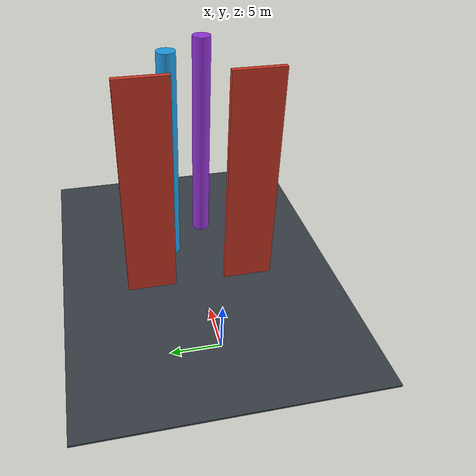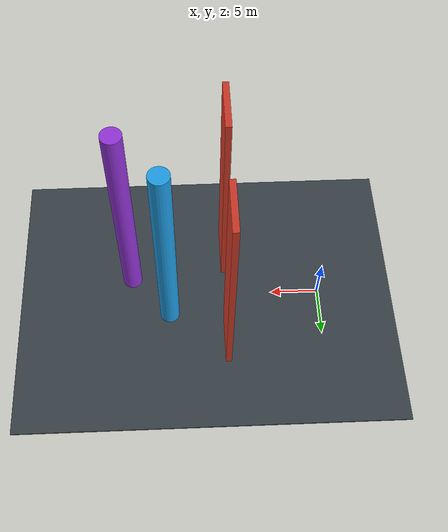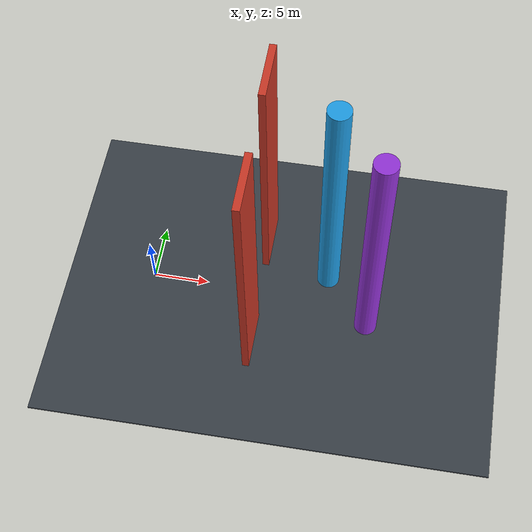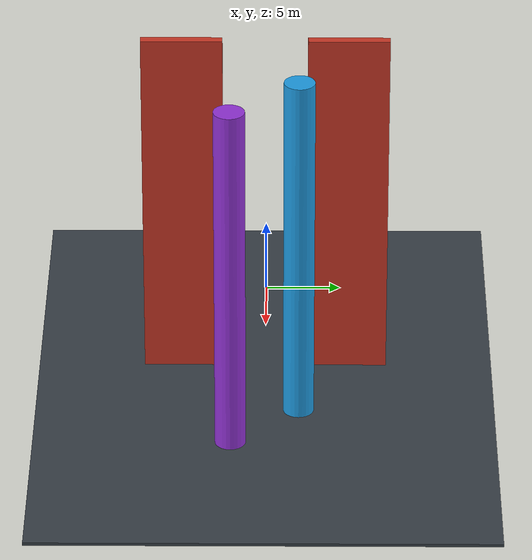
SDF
<sdf version="1.9">
 <world name="iris_mppi_narrow_gate">
  <physics name="1ms" type="ignore">
   <max_step_size>0.001</max_step_size>
   <real_time_factor>1.0</real_time_factor>
  </physics>
  <plugin filename="gz-sim-physics-system" name="gz::sim::systems::Physics"/>
  <plugin filename="gz-sim-sensors-system" name="gz::sim::systems::Sensors">
   <render_engine>ogre2</render_engine>
  </plugin>
  <plugin filename="gz-sim-user-commands-system" name="gz::sim::systems::UserCommands"/>
  <plugin filename="gz-sim-scene-broadcaster-system" name="gz::sim::systems::SceneBroadcaster"/>
  <plugin filename="gz-sim-imu-system" name="gz::sim::systems::Imu"/>
  <plugin filename="gz-sim-magnetometer-system" name="gz::sim::systems::Magnetometer"/>
  <plugin filename="gz-sim-air-pressure-system" name="gz::sim::systems::AirPressure"/>
  <plugin filename="gz-sim-navsat-system" name="gz::sim::systems::NavSat"/>
  <spherical_coordinates>
   <surface_model>EARTH_WGS84</surface_model>
   <latitude_deg>-35.363262</latitude_deg>
   <longitude_deg>149.165237</longitude_deg>
   <elevation>584</elevation>
   <heading_deg>0</heading_deg>
  </spherical_coordinates>
  <magnetic_field>2.1e-5 5.0e-6 -4.2e-5</magnetic_field>
  <scene><ambient>0.45 0.45 0.45 1</ambient><background>0.08 0.1 0.14 1</background><grid>true</grid></scene>
  <light type="directional" name="sun">
   <pose>0 0 40 0 0 0</pose>
   <diffuse>0.9 0.9 0.9 1</diffuse>
   <direction>-0.4 0.2 -1</direction>
  </light>
  <model name="ground">
   <static>true</static>
   <pose>12 0 -0.1 0 0 0</pose>
   <link name="link">
    <collision name="collision"><geometry><box><size>40 30 0.2</size></box></geometry></collision>
    <visual name="visual">
     <geometry><box><size>40 30 0.2</size></box></geometry>
     <material><ambient>0.16 0.18 0.2 1</ambient><diffuse>0.22 0.25 0.28 1</diffuse></material>
    </visual>
   </link>
  </model>
  <model name="gate_south">
   <static>true</static>
   <pose>10 -5.375 12 0 0 0</pose>
   <link name="link">
    <collision name="collision"><geometry><box><size>0.6 5.25 24</size></box></geometry></collision>
    <visual name="visual">
     <geometry><box><size>0.6 5.25 24</size></box></geometry>
     <material><ambient>0.65 0.18 0.12 1</ambient><diffuse>0.8 0.22 0.15 1</diffuse></material>
    </visual>
   </link>
  </model>
  <model name="gate_north">
   <static>true</static>
   <pose>10 5.375 12 0 0 0</pose>
   <link name="link">
    <collision name="collision"><geometry><box><size>0.6 5.25 24</size></box></geometry></collision>
    <visual name="visual">
     <geometry><box><size>0.6 5.25 24</size></box></geometry>
     <material><ambient>0.65 0.18 0.12 1</ambient><diffuse>0.8 0.22 0.15 1</diffuse></material>
    </visual>
   </link>
  </model>
  <model name="post_1">
   <static>true</static>
   <pose>16 2.2 12 0 0 0</pose>
   <link name="link">
    <collision name="collision">
     <geometry><cylinder><radius>1</radius><length>24</length></cylinder></geometry>
    </collision>
    <visual name="visual">
     <geometry><cylinder><radius>1</radius><length>24</length></cylinder></geometry>
     <material><ambient>0.1 0.5 0.75 1</ambient><diffuse>0.12 0.62 0.9 1</diffuse></material>
    </visual>
   </link>
  </model>
  <model name="post_2">
   <static>true</static>
   <pose>20 -2.2 12 0 0 0</pose>
   <link name="link">
    <collision name="collision">
     <geometry><cylinder><radius>1</radius><length>24</length></cylinder></geometry>
    </collision>
    <visual name="visual">
     <geometry><cylinder><radius>1</radius><length>24</length></cylinder></geometry>
     <material><ambient>0.48 0.15 0.7 1</ambient><diffuse>0.58 0.2 0.85 1</diffuse></material>
    </visual>
   </link>
  </model>
 </world>
</sdf>
